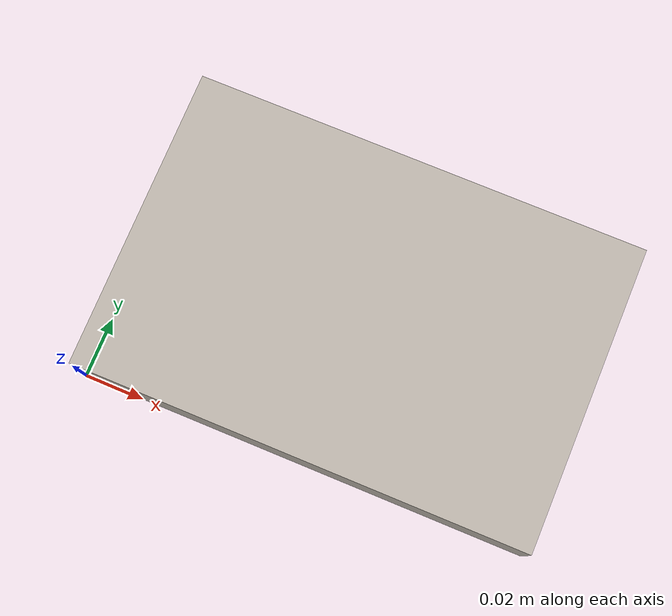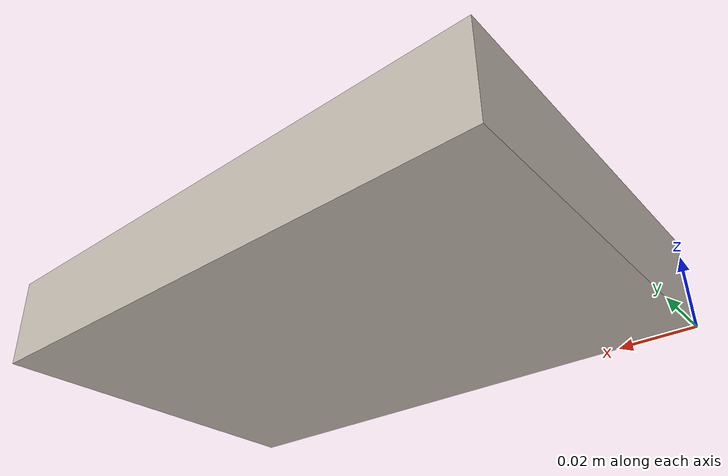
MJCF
<mujoco model="book2_blend">
  <default>
    <default class="visual">
      <geom group="2" type="mesh" contype="0" conaffinity="0"/>
    </default>
    <default class="collision">
      <!-- Softer/less sticky contact makes table and finger interactions smoother for flip-up. -->
      <geom group="3" condim="4" friction="0.12 0.002 0.0001" solref="0.02 1.0"
        solimp="0.90 0.96 0.002" margin="0.0005" />
    </default>
  </default>
  <asset>
    <texture type="2d" name="patterned_brick_floor" file="patterned_brick_floor.png"/>
    <material name="Material.002" texture="patterned_brick_floor" specular="0.5" shininess="0.25" />
    <mesh file="book2_blend.obj"/>
  </asset>
  <worldbody>
    <body name="book2_blend">
      <geom name="book_visual" material="Material.002" mesh="book2_blend"
        class="visual" mass="0"/>
      <geom name="book_collision" class="collision" pos="0.075 0.05 0.0125"
        size="0.075 0.05 0.0125" type="box" mass="1.375"/>
    </body>
  </worldbody>
</mujoco>
